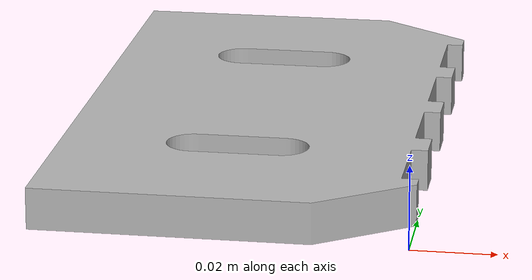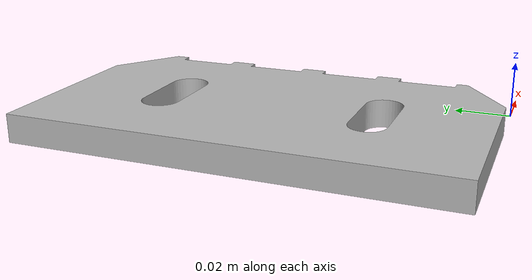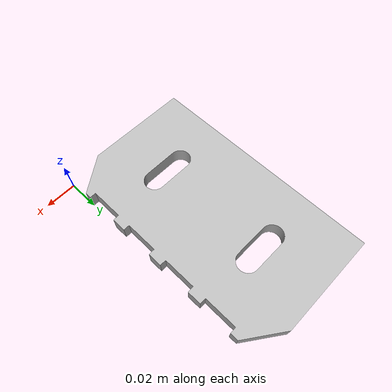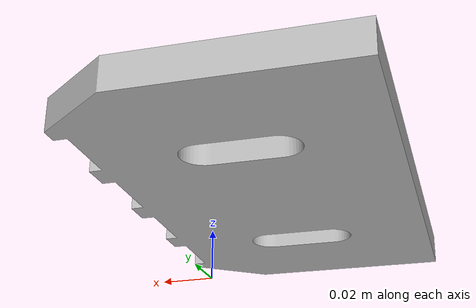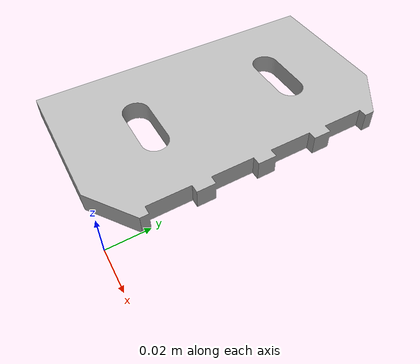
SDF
<?xml version="1.0" ?>
<sdf version="1.4">
  <model name="beam_weld_u">
    <static>true</static>
    <link name="link">
      <inertial>
        <mass>1000</mass>
      </inertial>
      <collision name="collision">
        <geometry>
          <mesh>
            <uri>model://beam_weld_u/meshes/beam_weld_u.stl</uri>
          </mesh>
        </geometry>
      </collision>
      <visual name="visual">
        <transparency>0.0</transparency>
        <geometry>
          <mesh>
            <uri>model://beam_weld_u/meshes/beam_weld_u.stl</uri>
          </mesh>
        </geometry>
      </visual>
    </link>
  </model>
</sdf>
